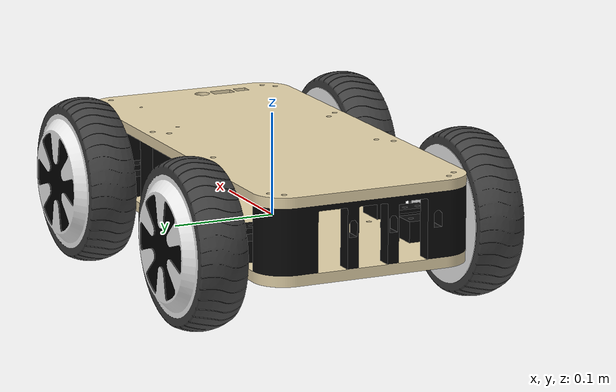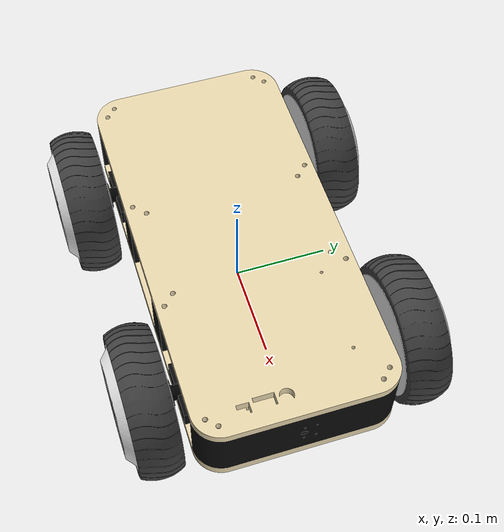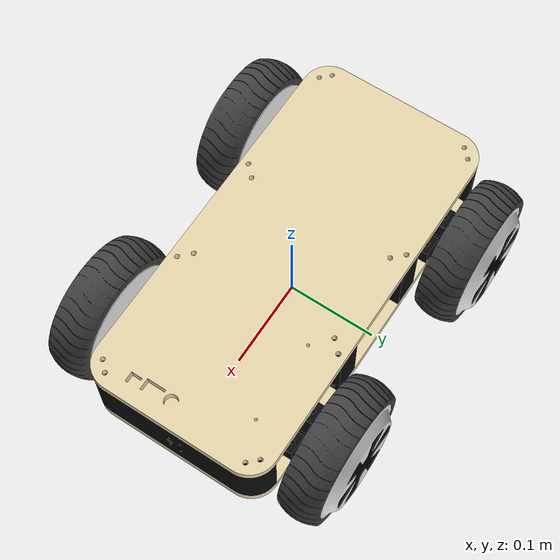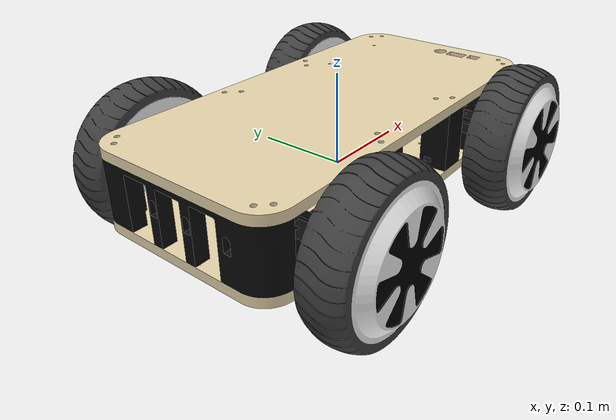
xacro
<?xml version="1.0"?>

<robot name="tugbot" xmlns:xacro="http://ros.org/wiki/xacro">

  <xacro:arg name="robot_namespace" default="/" />
  <xacro:arg name="vlp16_enabled" default="false" />

  <xacro:property name="M_PI" value="3.14159"/>

  <xacro:macro name="tugbot_wheel" params="wheel_prefix left_wheel *joint_pose">
		<link name="${wheel_prefix}_wheel_link">
			<inertial>
				<mass value="1.0" />
				 <xacro:if value="${left_wheel}">
				  <origin xyz="0 0.03 0" />
        </xacro:if>
        <xacro:unless value="${left_wheel}">
				  <origin xyz="0 -0.03 0"/>
        </xacro:unless>
				<inertia  ixx="0.002467" ixy="0" ixz="0" iyy="0.004411" iyz="0" izz="0.002467" />
			</inertial>
			<visual>
        <xacro:if value="${left_wheel}">
				  <origin xyz="0 0 0" rpy="0 0 ${M_PI/2}" />
        </xacro:if>
        <xacro:unless value="${left_wheel}">
				  <origin xyz="0 0 0" rpy="0 0 ${-M_PI/2}" />
        </xacro:unless>
				<geometry>
					<mesh filename="package://tugbot_description/meshes/wheel.dae" />
				</geometry>
			</visual>
			<collision>
        <xacro:if value="${left_wheel}">
				  <origin xyz="0 0.03 0" rpy="${M_PI/2} 0 0" />
        </xacro:if>
        <xacro:unless value="${left_wheel}">
				  <origin xyz="0 -0.03 0" rpy="${M_PI/2} 0 0" />
        </xacro:unless>

				<geometry>
					<cylinder length="${wheel_length}" radius="${wheel_radius}" />
				</geometry>
			</collision>
		</link>

		<gazebo reference="${wheel_prefix}_wheel_link">
			<mu1 value="1.0"/>
			<mu2 value="1.0"/>
			<kp value="10000000.0" />
			<kd value="1.0" />
			<fdir1 value="1 0 0"/>
		</gazebo>

		<joint name="${wheel_prefix}_wheel" type="continuous">
			<parent link="base_link"/>
			<child link="${wheel_prefix}_wheel_link"/>
			<xacro:insert_block name="joint_pose"/>
			<axis xyz="0 1 0" rpy="0 0 0" />
		</joint>

		<transmission name="${wheel_prefix}_wheel_trans" type="SimpleTransmission">
			<type>transmission_interface/SimpleTransmission</type>
			<actuator name="${wheel_prefix}_wheel_motor">
				<mechanicalReduction>1</mechanicalReduction>
			</actuator>
			<joint name="${wheel_prefix}_wheel">
				<hardwareInterface>hardware_interface/VelocityJointInterface</hardwareInterface>
			</joint>
		</transmission>

	</xacro:macro>

  <!-- Base Size -->
  <xacro:property name="base_x_size" value="0.44" />
  <xacro:property name="base_y_size" value="0.22" />
  <xacro:property name="base_z_size" value="0.17" />

  <!-- Wheel Mounting Positions -->
  <xacro:property name="wheelbase" value="0.26" />
  <xacro:property name="track" value="0.22" />
  <xacro:property name="wheel_vertical_offset" value="0.02" />

  <!-- Wheel Properties -->
  <xacro:property name="wheel_length" value="0.05" />
  <xacro:property name="wheel_radius" value="0.08" />

  <!-- Base link is the center of the robot's bottom plate -->
  <link name="base_link">
    <visual>
      <origin xyz="0 0 0" rpy="0 0 0" />
      <geometry>
        <mesh filename="package://tugbot_description/meshes/base_link.dae" />
      </geometry>
    </visual>
    <collision>
      <origin xyz="0 0 0.035" rpy="0 0 0" />
      <geometry>
        <box size="${base_x_size} ${base_y_size} ${base_z_size/2}"/>
      </geometry>
    </collision>
  </link>

    <!-- TODO: Work out actual inerias and mass-->
    <link name="inertial_link">
    <inertial>
      <mass value="1.0" />
      <origin xyz="0 0 0" />
      <inertia ixx="0.010375" ixy="0" ixz="0" iyy="0.005375" iyz="0" izz="0.02375" />
    </inertial>
  </link>

  <joint name="inertial_joint" type="fixed">
    <origin xyz="0 0 0" rpy="0 0 0" />
    <parent link="base_link" />
    <child link="inertial_link" />
  </joint>

  <xacro:tugbot_wheel wheel_prefix="front_left" left_wheel="true">
    <origin xyz="${wheelbase/2} ${track/2} ${wheel_vertical_offset}" rpy="0 0 0" />
  </xacro:tugbot_wheel>
  <xacro:tugbot_wheel wheel_prefix="front_right" left_wheel="false">
    <origin xyz="${wheelbase/2} ${-track/2} ${wheel_vertical_offset}" rpy="0 0 0" />
  </xacro:tugbot_wheel>
  <xacro:tugbot_wheel wheel_prefix="back_left" left_wheel="true">
    <origin xyz="${-wheelbase/2} ${track/2} ${wheel_vertical_offset}" rpy="0 0 0" />
  </xacro:tugbot_wheel>
  <xacro:tugbot_wheel wheel_prefix="back_right" left_wheel="false">
    <origin xyz="${-wheelbase/2} ${-track/2} ${wheel_vertical_offset}" rpy="0 0 0" />
  </xacro:tugbot_wheel>

  <xacro:if value="$(arg vlp16_enabled)">
    <xacro:include filename="$(find velodyne_description)/urdf/VLP-16.urdf.xacro"/>
    <VLP-16 parent="base_link" name="velodyne" topic="/velodyne_points">
        <!-- The 0.2 will most likely have to be adjusted to fit -->
        <origin xyz="0 0 0.1" rpy="0 0 0" />
    </VLP-16>
  </xacro:if>

  <gazebo>
    <plugin name="gazebo_ros_control" filename="libgazebo_ros_control.so">
      <robotNamespace>$(arg robot_namespace)</robotNamespace>
    </plugin>
  </gazebo>

  <gazebo>
    <plugin name="imu_controller" filename="libhector_gazebo_ros_imu.so">
      <robotNamespace>$(arg robot_namespace)</robotNamespace>
      <updateRate>50.0</updateRate>
      <bodyName>base_link</bodyName>
      <topicName>/navio_imu_mpu</topicName>
      <accelDrift>0.005 0.005 0.005</accelDrift>
      <accelGaussianNoise>0.005 0.005 0.005</accelGaussianNoise>
      <rateDrift>0.005 0.005 0.005 </rateDrift>
      <rateGaussianNoise>0.005 0.005 0.005 </rateGaussianNoise>
      <headingDrift>0.005</headingDrift>
      <headingGaussianNoise>0.005</headingGaussianNoise>
    </plugin>
  </gazebo>

</robot>
